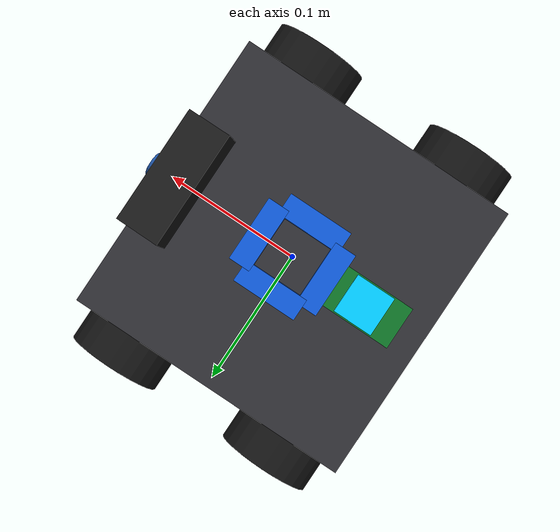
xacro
<?xml version="1.0"?>
<robot xmlns:xacro="http://www.ros.org/wiki/xacro" name="autonomous_box_robot">

  <!-- PARAMETERS -->
  <xacro:property name="chassis_length" value="0.20"/>
  <xacro:property name="chassis_width"  value="0.20"/>
  <xacro:property name="chassis_height" value="0.05"/>
  <xacro:property name="chassis_mass"   value="1.20"/>

  <xacro:property name="wheel_radius"   value="0.0325"/>
  <xacro:property name="wheel_width"    value="0.025"/>
  <xacro:property name="wheel_mass"     value="0.10"/>
  <xacro:property name="wheelbase"      value="0.120"/>
  <xacro:property name="track_width"    value="0.225"/>

  <!-- Include static URDF as base reference or macro expansions -->
  <xacro:include filename="$(find autonomous_robot_description)/urdf/robot.urdf"/>

</robot>

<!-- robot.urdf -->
<robot name="autonomous_box_robot">

  <!-- MATERIALS -->
  <material name="chassis_color">
    <color rgba="0.18 0.18 0.20 1.0"/>
  </material>
  <material name="wheel_rubber">
    <color rgba="0.08 0.08 0.08 1.0"/>
  </material>
  <material name="wheel_rim">
    <color rgba="0.9 0.4 0.0 1.0"/>
  </material>
  <material name="sensor_blue">
    <color rgba="0.05 0.35 0.85 1.0"/>
  </material>
  <material name="sensor_barrel">
    <color rgba="0.85 0.85 0.85 1.0"/>
  </material>
  <material name="webcam_black">
    <color rgba="0.1 0.1 0.1 1.0"/>
  </material>
  <material name="webcam_lens">
    <color rgba="0.1 0.3 0.6 1.0"/>
  </material>
  <material name="oled_screen">
    <color rgba="0.0 0.8 1.0 1.0"/>
  </material>
  <material name="pcb_green">
    <color rgba="0.05 0.45 0.15 1.0"/>
  </material>

  <!-- BASE FOOTPRINT (Ground plane projection) -->
  <link name="base_footprint"/>

  <joint name="base_footprint_joint" type="fixed">
    <parent link="base_footprint"/>
    <child link="base_link"/>
    <origin xyz="0 0 0.045" rpy="0 0 0"/>
  </joint>

  <!-- CHASSIS BASE LINK (20cm x 20cm x 5cm box) -->
  <link name="base_link">
    <visual>
      <origin xyz="0 0 0" rpy="0 0 0"/>
      <geometry>
        <box size="0.20 0.20 0.05"/>
      </geometry>
      <material name="chassis_color"/>
    </visual>
    <collision>
      <origin xyz="0 0 0" rpy="0 0 0"/>
      <geometry>
        <box size="0.20 0.20 0.05"/>
      </geometry>
    </collision>
    <inertial>
      <origin xyz="0 0 0" rpy="0 0 0"/>
      <mass value="1.20"/>
      <inertia ixx="0.00425" ixy="0.0" ixz="0.0"
               iyy="0.00425" iyz="0.0"
               izz="0.00800"/>
    </inertial>
  </link>

  <!-- WHEEL MACRO-LIKE DEFINITIONS (4WD Skid Steer) -->
  <!-- FRONT LEFT WHEEL -->
  <link name="wheel_front_left_link">
    <visual>
      <origin xyz="0 0 0" rpy="1.570796 0 0"/>
      <geometry>
        <cylinder radius="0.0325" length="0.025"/>
      </geometry>
      <material name="wheel_rubber"/>
    </visual>
    <collision>
      <origin xyz="0 0 0" rpy="1.570796 0 0"/>
      <geometry>
        <cylinder radius="0.0325" length="0.025"/>
      </geometry>
    </collision>
    <inertial>
      <origin xyz="0 0 0" rpy="1.570796 0 0"/>
      <mass value="0.10"/>
      <inertia ixx="0.0000316" ixy="0.0" ixz="0.0"
               iyy="0.0000528" iyz="0.0"
               izz="0.0000316"/>
    </inertial>
  </link>
  <joint name="wheel_front_left_joint" type="continuous">
    <parent link="base_link"/>
    <child link="wheel_front_left_link"/>
    <origin xyz="0.060 0.1125 -0.0125" rpy="0 0 0"/>
    <axis xyz="0 1 0"/>
  </joint>

  <!-- FRONT RIGHT WHEEL -->
  <link name="wheel_front_right_link">
    <visual>
      <origin xyz="0 0 0" rpy="1.570796 0 0"/>
      <geometry>
        <cylinder radius="0.0325" length="0.025"/>
      </geometry>
      <material name="wheel_rubber"/>
    </visual>
    <collision>
      <origin xyz="0 0 0" rpy="1.570796 0 0"/>
      <geometry>
        <cylinder radius="0.0325" length="0.025"/>
      </geometry>
    </collision>
    <inertial>
      <origin xyz="0 0 0" rpy="1.570796 0 0"/>
      <mass value="0.10"/>
      <inertia ixx="0.0000316" ixy="0.0" ixz="0.0"
               iyy="0.0000528" iyz="0.0"
               izz="0.0000316"/>
    </inertial>
  </link>
  <joint name="wheel_front_right_joint" type="continuous">
    <parent link="base_link"/>
    <child link="wheel_front_right_link"/>
    <origin xyz="0.060 -0.1125 -0.0125" rpy="0 0 0"/>
    <axis xyz="0 1 0"/>
  </joint>

  <!-- REAR LEFT WHEEL -->
  <link name="wheel_rear_left_link">
    <visual>
      <origin xyz="0 0 0" rpy="1.570796 0 0"/>
      <geometry>
        <cylinder radius="0.0325" length="0.025"/>
      </geometry>
      <material name="wheel_rubber"/>
    </visual>
    <collision>
      <origin xyz="0 0 0" rpy="1.570796 0 0"/>
      <geometry>
        <cylinder radius="0.0325" length="0.025"/>
      </geometry>
    </collision>
    <inertial>
      <origin xyz="0 0 0" rpy="1.570796 0 0"/>
      <mass value="0.10"/>
      <inertia ixx="0.0000316" ixy="0.0" ixz="0.0"
               iyy="0.0000528" iyz="0.0"
               izz="0.0000316"/>
    </inertial>
  </link>
  <joint name="wheel_rear_left_joint" type="continuous">
    <parent link="base_link"/>
    <child link="wheel_rear_left_link"/>
    <origin xyz="-0.060 0.1125 -0.0125" rpy="0 0 0"/>
    <axis xyz="0 1 0"/>
  </joint>

  <!-- REAR RIGHT WHEEL -->
  <link name="wheel_rear_right_link">
    <visual>
      <origin xyz="0 0 0" rpy="1.570796 0 0"/>
      <geometry>
        <cylinder radius="0.0325" length="0.025"/>
      </geometry>
      <material name="wheel_rubber"/>
    </visual>
    <collision>
      <origin xyz="0 0 0" rpy="1.570796 0 0"/>
      <geometry>
        <cylinder radius="0.0325" length="0.025"/>
      </geometry>
    </collision>
    <inertial>
      <origin xyz="0 0 0" rpy="1.570796 0 0"/>
      <mass value="0.10"/>
      <inertia ixx="0.0000316" ixy="0.0" ixz="0.0"
               iyy="0.0000528" iyz="0.0"
               izz="0.0000316"/>
    </inertial>
  </link>
  <joint name="wheel_rear_right_joint" type="continuous">
    <parent link="base_link"/>
    <child link="wheel_rear_right_link"/>
    <origin xyz="-0.060 -0.1125 -0.0125" rpy="0 0 0"/>
    <axis xyz="0 1 0"/>
  </joint>

  <!-- 4x HC-SR04 ULTRASONIC SENSOR HUB (Center of robot top surface) -->
  <link name="sonar_hub_link">
    <visual>
      <origin xyz="0 0 0.005" rpy="0 0 0"/>
      <geometry>
        <box size="0.04 0.04 0.01"/>
      </geometry>
      <material name="chassis_color"/>
    </visual>
  </link>
  <joint name="sonar_hub_joint" type="fixed">
    <parent link="base_link"/>
    <child link="sonar_hub_link"/>
    <origin xyz="0 0 0.025" rpy="0 0 0"/>
  </joint>

  <!-- 1. SONAR FRONT (0 deg, +X) -->
  <link name="sonar_front_link">
    <visual>
      <origin xyz="0 0 0" rpy="0 0 0"/>
      <geometry>
        <box size="0.015 0.045 0.020"/>
      </geometry>
      <material name="sensor_blue"/>
    </visual>
    <collision>
      <origin xyz="0 0 0" rpy="0 0 0"/>
      <geometry>
        <box size="0.015 0.045 0.020"/>
      </geometry>
    </collision>
  </link>
  <joint name="sonar_front_joint" type="fixed">
    <parent link="sonar_hub_link"/>
    <child link="sonar_front_link"/>
    <origin xyz="0.025 0 0.015" rpy="0 0 0"/>
  </joint>

  <!-- 2. SONAR LEFT (+90 deg, +Y) -->
  <link name="sonar_left_link">
    <visual>
      <origin xyz="0 0 0" rpy="0 0 0"/>
      <geometry>
        <box size="0.015 0.045 0.020"/>
      </geometry>
      <material name="sensor_blue"/>
    </visual>
    <collision>
      <origin xyz="0 0 0" rpy="0 0 0"/>
      <geometry>
        <box size="0.015 0.045 0.020"/>
      </geometry>
    </collision>
  </link>
  <joint name="sonar_left_joint" type="fixed">
    <parent link="sonar_hub_link"/>
    <child link="sonar_left_link"/>
    <origin xyz="0 0.025 0.015" rpy="0 0 1.570796"/>
  </joint>

  <!-- 3. SONAR BACK (180 deg, -X) -->
  <link name="sonar_back_link">
    <visual>
      <origin xyz="0 0 0" rpy="0 0 0"/>
      <geometry>
        <box size="0.015 0.045 0.020"/>
      </geometry>
      <material name="sensor_blue"/>
    </visual>
    <collision>
      <origin xyz="0 0 0" rpy="0 0 0"/>
      <geometry>
        <box size="0.015 0.045 0.020"/>
      </geometry>
    </collision>
  </link>
  <joint name="sonar_back_joint" type="fixed">
    <parent link="sonar_hub_link"/>
    <child link="sonar_back_link"/>
    <origin xyz="-0.025 0 0.015" rpy="0 0 3.141592"/>
  </joint>

  <!-- 4. SONAR RIGHT (-90 deg, -Y) -->
  <link name="sonar_right_link">
    <visual>
      <origin xyz="0 0 0" rpy="0 0 0"/>
      <geometry>
        <box size="0.015 0.045 0.020"/>
      </geometry>
      <material name="sensor_blue"/>
    </visual>
    <collision>
      <origin xyz="0 0 0" rpy="0 0 0"/>
      <geometry>
        <box size="0.015 0.045 0.020"/>
      </geometry>
    </collision>
  </link>
  <joint name="sonar_right_joint" type="fixed">
    <parent link="sonar_hub_link"/>
    <child link="sonar_right_link"/>
    <origin xyz="0 -0.025 0.015" rpy="0 0 -1.570796"/>
  </joint>

  <!-- 720P OPTIMAL EXTERNAL WEBCAM -->
  <link name="camera_link">
    <!-- Camera mount / stand -->
    <visual>
      <origin xyz="0 0 -0.015" rpy="0 0 0"/>
      <geometry>
        <cylinder radius="0.008" length="0.03"/>
      </geometry>
      <material name="webcam_black"/>
    </visual>
    <!-- Camera body (horizontal bar webcam style) -->
    <visual>
      <origin xyz="0 0 0.005" rpy="0 0 0"/>
      <geometry>
        <box size="0.030 0.080 0.025"/>
      </geometry>
      <material name="webcam_black"/>
    </visual>
    <!-- Camera lens element -->
    <visual>
      <origin xyz="0.016 0 0.005" rpy="0 1.570796 0"/>
      <geometry>
        <cylinder radius="0.008" length="0.004"/>
      </geometry>
      <material name="webcam_lens"/>
    </visual>
    <collision>
      <origin xyz="0 0 0.005" rpy="0 0 0"/>
      <geometry>
        <box size="0.030 0.080 0.025"/>
      </geometry>
    </collision>
  </link>
  <joint name="camera_joint" type="fixed">
    <parent link="base_link"/>
    <child link="camera_link"/>
    <!-- Positioned at front edge, elevated, slightly tilted down (-0.12 rad ~ 7 deg) -->
    <origin xyz="0.085 0.0 0.055" rpy="0 0.12 0"/>
  </joint>

  <!-- CAMERA OPTICAL LINK (REP-103: Z forward, X right, Y down) -->
  <link name="camera_optical_link"/>
  <joint name="camera_optical_joint" type="fixed">
    <parent link="camera_link"/>
    <child link="camera_optical_link"/>
    <origin xyz="0.016 0 0.005" rpy="-1.570796 0 -1.570796"/>
  </joint>

  <!-- NODEMCU WITH OLED DISPLAY -->
  <link name="nodemcu_link">
    <!-- NodeMCU PCB Board -->
    <visual>
      <origin xyz="0 0 0.002" rpy="0 0 0"/>
      <geometry>
        <box size="0.055 0.030 0.004"/>
      </geometry>
      <material name="pcb_green"/>
    </visual>
    <!-- OLED Display Module (0.96 inch SSD1306) -->
    <visual>
      <origin xyz="0 0 0.006" rpy="0 0 0"/>
      <geometry>
        <box size="0.028 0.028 0.003"/>
      </geometry>
      <material name="oled_screen"/>
    </visual>
  </link>
  <joint name="nodemcu_joint" type="fixed">
    <parent link="base_link"/>
    <child link="nodemcu_link"/>
    <origin xyz="-0.055 0.0 0.026" rpy="0 0 0"/>
  </joint>

</robot>
